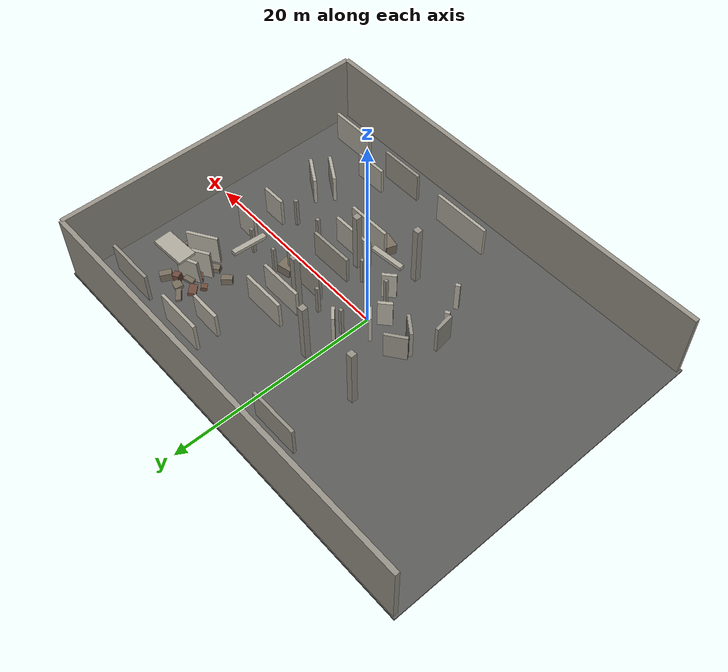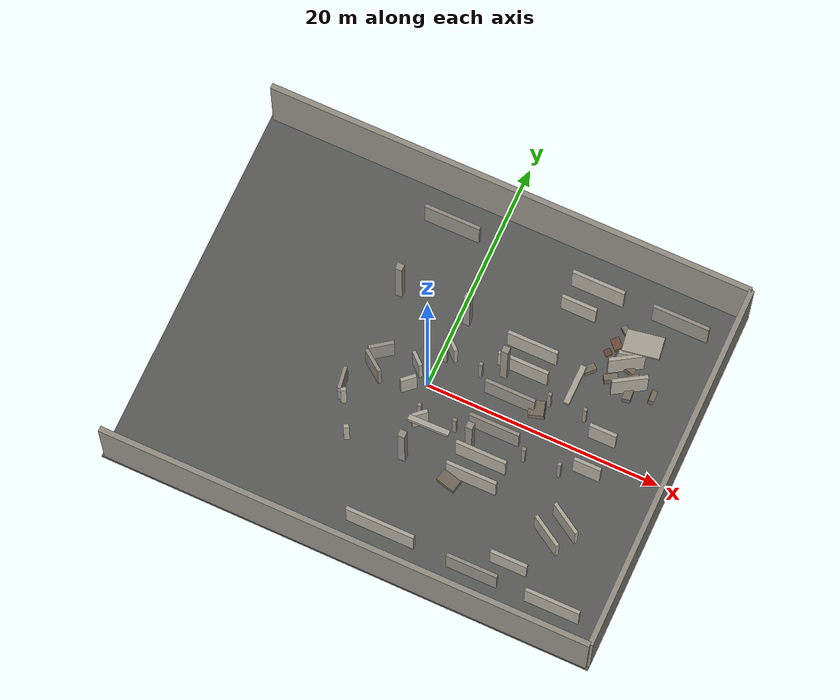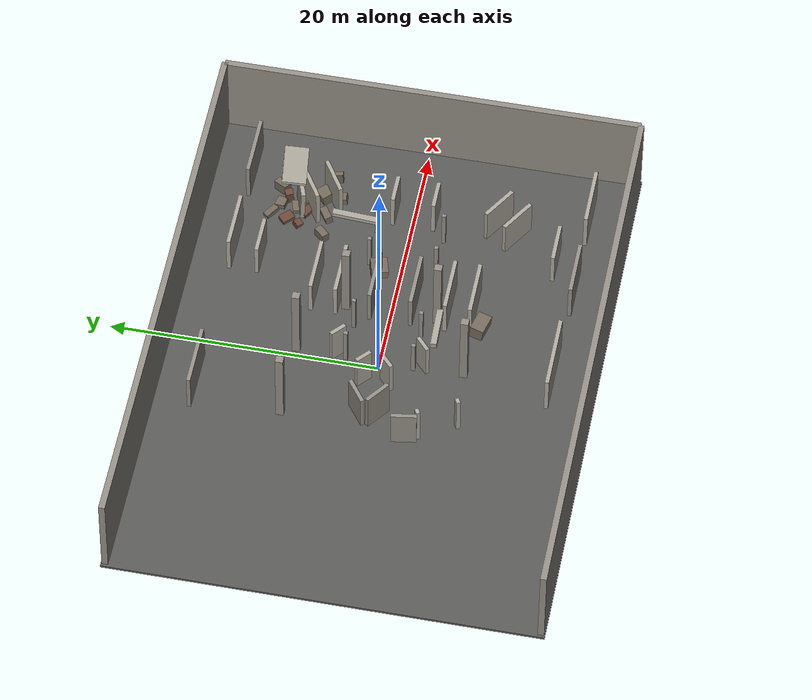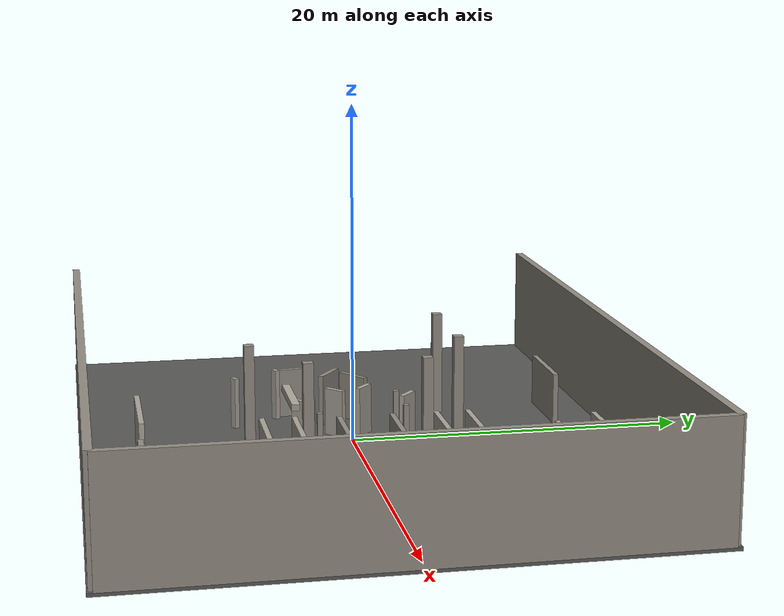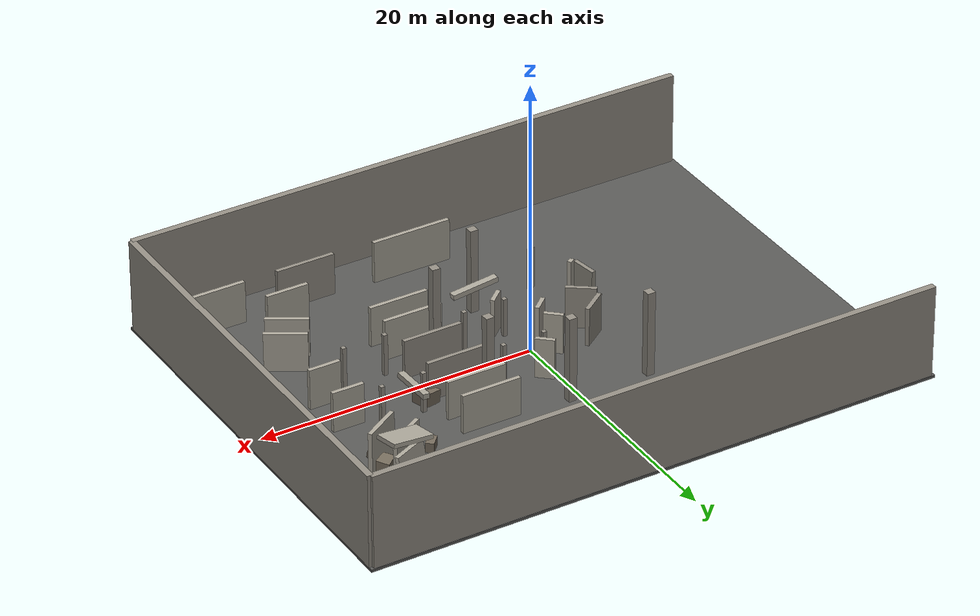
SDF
<sdf version="1.6">
 <model name="ruins_urban_01_challenge">
  <static>true</static>
  <link name="000_main_floor_slab">
   <pose>0.00000 0.00000 -0.10000 0.00000 0.00000 0.00000</pose>
   <visual name="visual">
    <geometry><box><size>42.00000 32.00000 0.20000</size></box></geometry>
    <material>
     <ambient>0.350 0.350 0.340 1</ambient>
     <diffuse>0.350 0.350 0.340 1</diffuse>
     <specular>0.03 0.03 0.03 1</specular>
    </material>
   </visual>
   <collision name="collision">
    <geometry><box><size>42.00000 32.00000 0.20000</size></box></geometry>
    <surface>
     <contact><collide_bitmask>0x01</collide_bitmask></contact>
     <friction><ode><mu>1.0</mu><mu2>1.0</mu2></ode></friction>
    </surface>
   </collision>
  </link>
  <link name="001_main_envelope_north">
   <pose>0.00000 15.70000 3.40000 0.00000 0.00000 0.00000</pose>
   <visual name="visual">
    <geometry><box><size>41.60000 0.46000 6.80000</size></box></geometry>
    <material>
     <ambient>0.580 0.560 0.520 1</ambient>
     <diffuse>0.580 0.560 0.520 1</diffuse>
     <specular>0.03 0.03 0.03 1</specular>
    </material>
   </visual>
   <collision name="collision">
    <geometry><box><size>41.60000 0.46000 6.80000</size></box></geometry>
    <surface>
     <contact><collide_bitmask>0x01</collide_bitmask></contact>
     <friction><ode><mu>1.0</mu><mu2>1.0</mu2></ode></friction>
    </surface>
   </collision>
  </link>
  <link name="002_main_envelope_south">
   <pose>0.00000 -15.70000 3.40000 0.00000 0.00000 0.00000</pose>
   <visual name="visual">
    <geometry><box><size>41.60000 0.46000 6.80000</size></box></geometry>
    <material>
     <ambient>0.580 0.560 0.520 1</ambient>
     <diffuse>0.580 0.560 0.520 1</diffuse>
     <specular>0.03 0.03 0.03 1</specular>
    </material>
   </visual>
   <collision name="collision">
    <geometry><box><size>41.60000 0.46000 6.80000</size></box></geometry>
    <surface>
     <contact><collide_bitmask>0x01</collide_bitmask></contact>
     <friction><ode><mu>1.0</mu><mu2>1.0</mu2></ode></friction>
    </surface>
   </collision>
  </link>
  <link name="005_main_envelope_east">
   <pose>20.80000 0.00000 3.40000 0.00000 0.00000 1.57080</pose>
   <visual name="visual">
    <geometry><box><size>31.40000 0.46000 6.80000</size></box></geometry>
    <material>
     <ambient>0.580 0.560 0.520 1</ambient>
     <diffuse>0.580 0.560 0.520 1</diffuse>
     <specular>0.03 0.03 0.03 1</specular>
    </material>
   </visual>
   <collision name="collision">
    <geometry><box><size>31.40000 0.46000 6.80000</size></box></geometry>
    <surface>
     <contact><collide_bitmask>0x01</collide_bitmask></contact>
     <friction><ode><mu>1.0</mu><mu2>1.0</mu2></ode></friction>
    </surface>
   </collision>
  </link>
  <link name="025_main_corridor_core_s_core_w_right">
   <pose>-5.99273 -3.01811 1.48500 0.00000 0.00000 1.72345</pose>
   <visual name="visual">
    <geometry><box><size>1.87647 0.30000 2.97000</size></box></geometry>
    <material>
     <ambient>0.580 0.560 0.520 1</ambient>
     <diffuse>0.580 0.560 0.520 1</diffuse>
     <specular>0.03 0.03 0.03 1</specular>
    </material>
   </visual>
   <collision name="collision">
    <geometry><box><size>1.87647 0.30000 2.97000</size></box></geometry>
    <surface>
     <contact><collide_bitmask>0x01</collide_bitmask></contact>
     <friction><ode><mu>1.0</mu><mu2>1.0</mu2></ode></friction>
    </surface>
   </collision>
  </link>
  <link name="029_main_corridor_core_w_atrium_n_right">
   <pose>-4.35304 0.76668 1.42500 0.00000 0.00000 0.62880</pose>
   <visual name="visual">
    <geometry><box><size>2.10074 0.30000 2.85000</size></box></geometry>
    <material>
     <ambient>0.580 0.560 0.520 1</ambient>
     <diffuse>0.580 0.560 0.520 1</diffuse>
     <specular>0.03 0.03 0.03 1</specular>
    </material>
   </visual>
   <collision name="collision">
    <geometry><box><size>2.10074 0.30000 2.85000</size></box></geometry>
    <surface>
     <contact><collide_bitmask>0x01</collide_bitmask></contact>
     <friction><ode><mu>1.0</mu><mu2>1.0</mu2></ode></friction>
    </surface>
   </collision>
  </link>
  <link name="030_main_corridor_atrium_n_central_left">
   <pose>0.76315 3.13980 1.48500 0.00000 0.00000 -0.72664</pose>
   <visual name="visual">
    <geometry><box><size>1.32080 0.30000 2.97000</size></box></geometry>
    <material>
     <ambient>0.680 0.660 0.610 1</ambient>
     <diffuse>0.680 0.660 0.610 1</diffuse>
     <specular>0.03 0.03 0.03 1</specular>
    </material>
   </visual>
   <collision name="collision">
    <geometry><box><size>1.32080 0.30000 2.97000</size></box></geometry>
    <surface>
     <contact><collide_bitmask>0x01</collide_bitmask></contact>
     <friction><ode><mu>1.0</mu><mu2>1.0</mu2></ode></friction>
    </surface>
   </collision>
  </link>
  <link name="031_main_corridor_atrium_n_central_right">
   <pose>-1.26315 0.86020 1.48500 0.00000 0.00000 -0.72664</pose>
   <visual name="visual">
    <geometry><box><size>1.32080 0.30000 2.97000</size></box></geometry>
    <material>
     <ambient>0.680 0.660 0.610 1</ambient>
     <diffuse>0.680 0.660 0.610 1</diffuse>
     <specular>0.03 0.03 0.03 1</specular>
    </material>
   </visual>
   <collision name="collision">
    <geometry><box><size>1.32080 0.30000 2.97000</size></box></geometry>
    <surface>
     <contact><collide_bitmask>0x01</collide_bitmask></contact>
     <friction><ode><mu>1.0</mu><mu2>1.0</mu2></ode></friction>
    </surface>
   </collision>
  </link>
  <link name="032_main_corridor_core_w_atrium_s_left">
   <pose>-4.35304 -0.76668 1.54500 0.00000 0.00000 -0.62880</pose>
   <visual name="visual">
    <geometry><box><size>2.10074 0.30000 3.09000</size></box></geometry>
    <material>
     <ambient>0.580 0.560 0.520 1</ambient>
     <diffuse>0.580 0.560 0.520 1</diffuse>
     <specular>0.03 0.03 0.03 1</specular>
    </material>
   </visual>
   <collision name="collision">
    <geometry><box><size>2.10074 0.30000 3.09000</size></box></geometry>
    <surface>
     <contact><collide_bitmask>0x01</collide_bitmask></contact>
     <friction><ode><mu>1.0</mu><mu2>1.0</mu2></ode></friction>
    </surface>
   </collision>
  </link>
  <link name="034_main_corridor_atrium_s_central_left">
   <pose>-1.26315 -0.86020 1.42500 0.00000 0.00000 0.72664</pose>
   <visual name="visual">
    <geometry><box><size>1.32080 0.30000 2.85000</size></box></geometry>
    <material>
     <ambient>0.680 0.660 0.610 1</ambient>
     <diffuse>0.680 0.660 0.610 1</diffuse>
     <specular>0.03 0.03 0.03 1</specular>
    </material>
   </visual>
   <collision name="collision">
    <geometry><box><size>1.32080 0.30000 2.85000</size></box></geometry>
    <surface>
     <contact><collide_bitmask>0x01</collide_bitmask></contact>
     <friction><ode><mu>1.0</mu><mu2>1.0</mu2></ode></friction>
    </surface>
   </collision>
  </link>
  <link name="035_main_corridor_atrium_s_central_right">
   <pose>0.76315 -3.13980 1.42500 0.00000 0.00000 0.72664</pose>
   <visual name="visual">
    <geometry><box><size>1.32080 0.30000 2.85000</size></box></geometry>
    <material>
     <ambient>0.680 0.660 0.610 1</ambient>
     <diffuse>0.680 0.660 0.610 1</diffuse>
     <specular>0.03 0.03 0.03 1</specular>
    </material>
   </visual>
   <collision name="collision">
    <geometry><box><size>1.32080 0.30000 2.85000</size></box></geometry>
    <surface>
     <contact><collide_bitmask>0x01</collide_bitmask></contact>
     <friction><ode><mu>1.0</mu><mu2>1.0</mu2></ode></friction>
    </surface>
   </collision>
  </link>
  <link name="036_main_corridor_core_s_atrium_s_left">
   <pose>-5.49061 -3.91691 1.54500 0.00000 0.00000 0.50710</pose>
   <visual name="visual">
    <geometry><box><size>0.44782 0.30000 3.09000</size></box></geometry>
    <material>
     <ambient>0.680 0.660 0.610 1</ambient>
     <diffuse>0.680 0.660 0.610 1</diffuse>
     <specular>0.03 0.03 0.03 1</specular>
    </material>
   </visual>
   <collision name="collision">
    <geometry><box><size>0.44782 0.30000 3.09000</size></box></geometry>
    <surface>
     <contact><collide_bitmask>0x01</collide_bitmask></contact>
     <friction><ode><mu>1.0</mu><mu2>1.0</mu2></ode></friction>
    </surface>
   </collision>
  </link>
  <link name="037_main_corridor_core_s_atrium_s_right">
   <pose>-4.00939 -6.58309 1.54500 0.00000 0.00000 0.50710</pose>
   <visual name="visual">
    <geometry><box><size>0.44782 0.30000 3.09000</size></box></geometry>
    <material>
     <ambient>0.680 0.660 0.610 1</ambient>
     <diffuse>0.680 0.660 0.610 1</diffuse>
     <specular>0.03 0.03 0.03 1</specular>
    </material>
   </visual>
   <collision name="collision">
    <geometry><box><size>0.44782 0.30000 3.09000</size></box></geometry>
    <surface>
     <contact><collide_bitmask>0x01</collide_bitmask></contact>
     <friction><ode><mu>1.0</mu><mu2>1.0</mu2></ode></friction>
    </surface>
   </collision>
  </link>
  <link name="038_main_corridor_central_east_core_left">
   <pose>6.50000 1.52500 1.42500 0.00000 0.00000 0.00000</pose>
   <visual name="visual">
    <geometry><box><size>4.30000 0.30000 2.85000</size></box></geometry>
    <material>
     <ambient>0.580 0.560 0.520 1</ambient>
     <diffuse>0.580 0.560 0.520 1</diffuse>
     <specular>0.03 0.03 0.03 1</specular>
    </material>
   </visual>
   <collision name="collision">
    <geometry><box><size>4.30000 0.30000 2.85000</size></box></geometry>
    <surface>
     <contact><collide_bitmask>0x01</collide_bitmask></contact>
     <friction><ode><mu>1.0</mu><mu2>1.0</mu2></ode></friction>
    </surface>
   </collision>
  </link>
  <link name="039_main_corridor_central_east_core_right">
   <pose>6.50000 -1.52500 1.42500 0.00000 0.00000 0.00000</pose>
   <visual name="visual">
    <geometry><box><size>4.30000 0.30000 2.85000</size></box></geometry>
    <material>
     <ambient>0.580 0.560 0.520 1</ambient>
     <diffuse>0.580 0.560 0.520 1</diffuse>
     <specular>0.03 0.03 0.03 1</specular>
    </material>
   </visual>
   <collision name="collision">
    <geometry><box><size>4.30000 0.30000 2.85000</size></box></geometry>
    <surface>
     <contact><collide_bitmask>0x01</collide_bitmask></contact>
     <friction><ode><mu>1.0</mu><mu2>1.0</mu2></ode></friction>
    </surface>
   </collision>
  </link>
  <link name="040_main_corridor_east_core_east_exit_left">
   <pose>14.50000 1.52500 1.48500 0.00000 0.00000 0.00000</pose>
   <visual name="visual">
    <geometry><box><size>2.30000 0.30000 2.97000</size></box></geometry>
    <material>
     <ambient>0.680 0.660 0.610 1</ambient>
     <diffuse>0.680 0.660 0.610 1</diffuse>
     <specular>0.03 0.03 0.03 1</specular>
    </material>
   </visual>
   <collision name="collision">
    <geometry><box><size>2.30000 0.30000 2.97000</size></box></geometry>
    <surface>
     <contact><collide_bitmask>0x01</collide_bitmask></contact>
     <friction><ode><mu>1.0</mu><mu2>1.0</mu2></ode></friction>
    </surface>
   </collision>
  </link>
  <link name="041_main_corridor_east_core_east_exit_right">
   <pose>14.50000 -1.52500 1.48500 0.00000 0.00000 0.00000</pose>
   <visual name="visual">
    <geometry><box><size>2.30000 0.30000 2.97000</size></box></geometry>
    <material>
     <ambient>0.680 0.660 0.610 1</ambient>
     <diffuse>0.680 0.660 0.610 1</diffuse>
     <specular>0.03 0.03 0.03 1</specular>
    </material>
   </visual>
   <collision name="collision">
    <geometry><box><size>2.30000 0.30000 2.97000</size></box></geometry>
    <surface>
     <contact><collide_bitmask>0x01</collide_bitmask></contact>
     <friction><ode><mu>1.0</mu><mu2>1.0</mu2></ode></friction>
    </surface>
   </collision>
  </link>
  <link name="042_main_corridor_central_east_n1_left">
   <pose>0.47500 2.50000 1.54500 0.00000 0.00000 1.57080</pose>
   <visual name="visual">
    <geometry><box><size>0.30000 0.30000 3.09000</size></box></geometry>
    <material>
     <ambient>0.580 0.560 0.520 1</ambient>
     <diffuse>0.580 0.560 0.520 1</diffuse>
     <specular>0.03 0.03 0.03 1</specular>
    </material>
   </visual>
   <collision name="collision">
    <geometry><box><size>0.30000 0.30000 3.09000</size></box></geometry>
    <surface>
     <contact><collide_bitmask>0x01</collide_bitmask></contact>
     <friction><ode><mu>1.0</mu><mu2>1.0</mu2></ode></friction>
    </surface>
   </collision>
  </link>
  <link name="043_main_corridor_central_east_n1_right">
   <pose>3.52500 2.50000 1.54500 0.00000 0.00000 1.57080</pose>
   <visual name="visual">
    <geometry><box><size>0.30000 0.30000 3.09000</size></box></geometry>
    <material>
     <ambient>0.580 0.560 0.520 1</ambient>
     <diffuse>0.580 0.560 0.520 1</diffuse>
     <specular>0.03 0.03 0.03 1</specular>
    </material>
   </visual>
   <collision name="collision">
    <geometry><box><size>0.30000 0.30000 3.09000</size></box></geometry>
    <surface>
     <contact><collide_bitmask>0x01</collide_bitmask></contact>
     <friction><ode><mu>1.0</mu><mu2>1.0</mu2></ode></friction>
    </surface>
   </collision>
  </link>
  <link name="044_main_corridor_east_n1_east_n2_left">
   <pose>6.50000 5.92500 1.42500 0.00000 0.00000 0.00000</pose>
   <visual name="visual">
    <geometry><box><size>4.30000 0.30000 2.85000</size></box></geometry>
    <material>
     <ambient>0.680 0.660 0.610 1</ambient>
     <diffuse>0.680 0.660 0.610 1</diffuse>
     <specular>0.03 0.03 0.03 1</specular>
    </material>
   </visual>
   <collision name="collision">
    <geometry><box><size>4.30000 0.30000 2.85000</size></box></geometry>
    <surface>
     <contact><collide_bitmask>0x01</collide_bitmask></contact>
     <friction><ode><mu>1.0</mu><mu2>1.0</mu2></ode></friction>
    </surface>
   </collision>
  </link>
  <link name="045_main_corridor_east_n1_east_n2_right">
   <pose>6.50000 4.07500 1.42500 0.00000 0.00000 0.00000</pose>
   <visual name="visual">
    <geometry><box><size>4.30000 0.30000 2.85000</size></box></geometry>
    <material>
     <ambient>0.680 0.660 0.610 1</ambient>
     <diffuse>0.680 0.660 0.610 1</diffuse>
     <specular>0.03 0.03 0.03 1</specular>
    </material>
   </visual>
   <collision name="collision">
    <geometry><box><size>4.30000 0.30000 2.85000</size></box></geometry>
    <surface>
     <contact><collide_bitmask>0x01</collide_bitmask></contact>
     <friction><ode><mu>1.0</mu><mu2>1.0</mu2></ode></friction>
    </surface>
   </collision>
  </link>
  <link name="046_main_corridor_east_n2_east_core_left">
   <pose>12.52500 2.50000 1.48500 0.00000 0.00000 -1.57080</pose>
   <visual name="visual">
    <geometry><box><size>0.30000 0.30000 2.97000</size></box></geometry>
    <material>
     <ambient>0.580 0.560 0.520 1</ambient>
     <diffuse>0.580 0.560 0.520 1</diffuse>
     <specular>0.03 0.03 0.03 1</specular>
    </material>
   </visual>
   <collision name="collision">
    <geometry><box><size>0.30000 0.30000 2.97000</size></box></geometry>
    <surface>
     <contact><collide_bitmask>0x01</collide_bitmask></contact>
     <friction><ode><mu>1.0</mu><mu2>1.0</mu2></ode></friction>
    </surface>
   </collision>
  </link>
  <link name="047_main_corridor_east_n2_east_core_right">
   <pose>9.47500 2.50000 1.48500 0.00000 0.00000 -1.57080</pose>
   <visual name="visual">
    <geometry><box><size>0.30000 0.30000 2.97000</size></box></geometry>
    <material>
     <ambient>0.580 0.560 0.520 1</ambient>
     <diffuse>0.580 0.560 0.520 1</diffuse>
     <specular>0.03 0.03 0.03 1</specular>
    </material>
   </visual>
   <collision name="collision">
    <geometry><box><size>0.30000 0.30000 2.97000</size></box></geometry>
    <surface>
     <contact><collide_bitmask>0x01</collide_bitmask></contact>
     <friction><ode><mu>1.0</mu><mu2>1.0</mu2></ode></friction>
    </surface>
   </collision>
  </link>
  <link name="048_main_corridor_east_n2_east_n_dead_left">
   <pose>13.77831 7.76649 1.54500 0.00000 0.00000 0.55165</pose>
   <visual name="visual">
    <geometry><box><size>2.93217 0.30000 3.09000</size></box></geometry>
    <material>
     <ambient>0.680 0.660 0.610 1</ambient>
     <diffuse>0.680 0.660 0.610 1</diffuse>
     <specular>0.03 0.03 0.03 1</specular>
    </material>
   </visual>
   <collision name="collision">
    <geometry><box><size>2.93217 0.30000 3.09000</size></box></geometry>
    <surface>
     <contact><collide_bitmask>0x01</collide_bitmask></contact>
     <friction><ode><mu>1.0</mu><mu2>1.0</mu2></ode></friction>
    </surface>
   </collision>
  </link>
  <link name="049_main_corridor_east_n2_east_n_dead_right">
   <pose>14.72169 6.23351 1.54500 0.00000 0.00000 0.55165</pose>
   <visual name="visual">
    <geometry><box><size>2.93217 0.30000 3.09000</size></box></geometry>
    <material>
     <ambient>0.680 0.660 0.610 1</ambient>
     <diffuse>0.680 0.660 0.610 1</diffuse>
     <specular>0.03 0.03 0.03 1</specular>
    </material>
   </visual>
   <collision name="collision">
    <geometry><box><size>2.93217 0.30000 3.09000</size></box></geometry>
    <surface>
     <contact><collide_bitmask>0x01</collide_bitmask></contact>
     <friction><ode><mu>1.0</mu><mu2>1.0</mu2></ode></friction>
    </surface>
   </collision>
  </link>
  <link name="050_main_corridor_central_east_s1_left">
   <pose>3.52500 -2.50000 1.42500 0.00000 0.00000 -1.57080</pose>
   <visual name="visual">
    <geometry><box><size>0.30000 0.30000 2.85000</size></box></geometry>
    <material>
     <ambient>0.580 0.560 0.520 1</ambient>
     <diffuse>0.580 0.560 0.520 1</diffuse>
     <specular>0.03 0.03 0.03 1</specular>
    </material>
   </visual>
   <collision name="collision">
    <geometry><box><size>0.30000 0.30000 2.85000</size></box></geometry>
    <surface>
     <contact><collide_bitmask>0x01</collide_bitmask></contact>
     <friction><ode><mu>1.0</mu><mu2>1.0</mu2></ode></friction>
    </surface>
   </collision>
  </link>
  <link name="051_main_corridor_central_east_s1_right">
   <pose>0.47500 -2.50000 1.42500 0.00000 0.00000 -1.57080</pose>
   <visual name="visual">
    <geometry><box><size>0.30000 0.30000 2.85000</size></box></geometry>
    <material>
     <ambient>0.580 0.560 0.520 1</ambient>
     <diffuse>0.580 0.560 0.520 1</diffuse>
     <specular>0.03 0.03 0.03 1</specular>
    </material>
   </visual>
   <collision name="collision">
    <geometry><box><size>0.30000 0.30000 2.85000</size></box></geometry>
    <surface>
     <contact><collide_bitmask>0x01</collide_bitmask></contact>
     <friction><ode><mu>1.0</mu><mu2>1.0</mu2></ode></friction>
    </surface>
   </collision>
  </link>
  <link name="052_main_corridor_east_s1_east_s2_left">
   <pose>6.50000 -4.07500 1.48500 0.00000 0.00000 0.00000</pose>
   <visual name="visual">
    <geometry><box><size>4.30000 0.30000 2.97000</size></box></geometry>
    <material>
     <ambient>0.680 0.660 0.610 1</ambient>
     <diffuse>0.680 0.660 0.610 1</diffuse>
     <specular>0.03 0.03 0.03 1</specular>
    </material>
   </visual>
   <collision name="collision">
    <geometry><box><size>4.30000 0.30000 2.97000</size></box></geometry>
    <surface>
     <contact><collide_bitmask>0x01</collide_bitmask></contact>
     <friction><ode><mu>1.0</mu><mu2>1.0</mu2></ode></friction>
    </surface>
   </collision>
  </link>
  <link name="053_main_corridor_east_s1_east_s2_right">
   <pose>6.50000 -5.92500 1.48500 0.00000 0.00000 0.00000</pose>
   <visual name="visual">
    <geometry><box><size>4.30000 0.30000 2.97000</size></box></geometry>
    <material>
     <ambient>0.680 0.660 0.610 1</ambient>
     <diffuse>0.680 0.660 0.610 1</diffuse>
     <specular>0.03 0.03 0.03 1</specular>
    </material>
   </visual>
   <collision name="collision">
    <geometry><box><size>4.30000 0.30000 2.97000</size></box></geometry>
    <surface>
     <contact><collide_bitmask>0x01</collide_bitmask></contact>
     <friction><ode><mu>1.0</mu><mu2>1.0</mu2></ode></friction>
    </surface>
   </collision>
  </link>
  <link name="054_main_corridor_east_s2_east_core_left">
   <pose>9.47500 -2.50000 1.54500 0.00000 0.00000 1.57080</pose>
   <visual name="visual">
    <geometry><box><size>0.30000 0.30000 3.09000</size></box></geometry>
    <material>
     <ambient>0.580 0.560 0.520 1</ambient>
     <diffuse>0.580 0.560 0.520 1</diffuse>
     <specular>0.03 0.03 0.03 1</specular>
    </material>
   </visual>
   <collision name="collision">
    <geometry><box><size>0.30000 0.30000 3.09000</size></box></geometry>
    <surface>
     <contact><collide_bitmask>0x01</collide_bitmask></contact>
     <friction><ode><mu>1.0</mu><mu2>1.0</mu2></ode></friction>
    </surface>
   </collision>
  </link>
  <link name="055_main_corridor_east_s2_east_core_right">
   <pose>12.52500 -2.50000 1.54500 0.00000 0.00000 1.57080</pose>
   <visual name="visual">
    <geometry><box><size>0.30000 0.30000 3.09000</size></box></geometry>
    <material>
     <ambient>0.580 0.560 0.520 1</ambient>
     <diffuse>0.580 0.560 0.520 1</diffuse>
     <specular>0.03 0.03 0.03 1</specular>
    </material>
   </visual>
   <collision name="collision">
    <geometry><box><size>0.30000 0.30000 3.09000</size></box></geometry>
    <surface>
     <contact><collide_bitmask>0x01</collide_bitmask></contact>
     <friction><ode><mu>1.0</mu><mu2>1.0</mu2></ode></friction>
    </surface>
   </collision>
  </link>
  <link name="056_main_corridor_east_s2_east_s_dead_left">
   <pose>14.72169 -6.23351 1.42500 0.00000 0.00000 -0.55165</pose>
   <visual name="visual">
    <geometry><box><size>2.93217 0.30000 2.85000</size></box></geometry>
    <material>
     <ambient>0.680 0.660 0.610 1</ambient>
     <diffuse>0.680 0.660 0.610 1</diffuse>
     <specular>0.03 0.03 0.03 1</specular>
    </material>
   </visual>
   <collision name="collision">
    <geometry><box><size>2.93217 0.30000 2.85000</size></box></geometry>
    <surface>
     <contact><collide_bitmask>0x01</collide_bitmask></contact>
     <friction><ode><mu>1.0</mu><mu2>1.0</mu2></ode></friction>
    </surface>
   </collision>
  </link>
  <link name="057_main_corridor_east_s2_east_s_dead_right">
   <pose>13.77831 -7.76649 1.42500 0.00000 0.00000 -0.55165</pose>
   <visual name="visual">
    <geometry><box><size>2.93217 0.30000 2.85000</size></box></geometry>
    <material>
     <ambient>0.680 0.660 0.610 1</ambient>
     <diffuse>0.680 0.660 0.610 1</diffuse>
     <specular>0.03 0.03 0.03 1</specular>
    </material>
   </visual>
   <collision name="collision">
    <geometry><box><size>2.93217 0.30000 2.85000</size></box></geometry>
    <surface>
     <contact><collide_bitmask>0x01</collide_bitmask></contact>
     <friction><ode><mu>1.0</mu><mu2>1.0</mu2></ode></friction>
    </surface>
   </collision>
  </link>
  <link name="060_main_shell_north_service">
   <pose>-3.60000 12.80000 1.55000 0.00000 0.00000 0.00000</pose>
   <visual name="visual">
    <geometry><box><size>4.80000 0.30000 3.10000</size></box></geometry>
    <material>
     <ambient>0.580 0.560 0.520 1</ambient>
     <diffuse>0.580 0.560 0.520 1</diffuse>
     <specular>0.03 0.03 0.03 1</specular>
    </material>
   </visual>
   <collision name="collision">
    <geometry><box><size>4.80000 0.30000 3.10000</size></box></geometry>
    <surface>
     <contact><collide_bitmask>0x01</collide_bitmask></contact>
     <friction><ode><mu>1.0</mu><mu2>1.0</mu2></ode></friction>
    </surface>
   </collision>
  </link>
  <link name="061_main_shell_east_north_a">
   <pose>9.25000 12.60000 1.55000 0.00000 0.00000 0.00000</pose>
   <visual name="visual">
    <geometry><box><size>4.50000 0.30000 3.10000</size></box></geometry>
    <material>
     <ambient>0.680 0.660 0.610 1</ambient>
     <diffuse>0.680 0.660 0.610 1</diffuse>
     <specular>0.03 0.03 0.03 1</specular>
    </material>
   </visual>
   <collision name="collision">
    <geometry><box><size>4.50000 0.30000 3.10000</size></box></geometry>
    <surface>
     <contact><collide_bitmask>0x01</collide_bitmask></contact>
     <friction><ode><mu>1.0</mu><mu2>1.0</mu2></ode></friction>
    </surface>
   </collision>
  </link>
  <link name="062_main_shell_east_north_b">
   <pose>16.40000 12.60000 1.55000 0.00000 0.00000 0.00000</pose>
   <visual name="visual">
    <geometry><box><size>4.80000 0.30000 3.10000</size></box></geometry>
    <material>
     <ambient>0.580 0.560 0.520 1</ambient>
     <diffuse>0.580 0.560 0.520 1</diffuse>
     <specular>0.03 0.03 0.03 1</specular>
    </material>
   </visual>
   <collision name="collision">
    <geometry><box><size>4.80000 0.30000 3.10000</size></box></geometry>
    <surface>
     <contact><collide_bitmask>0x01</collide_bitmask></contact>
     <friction><ode><mu>1.0</mu><mu2>1.0</mu2></ode></friction>
    </surface>
   </collision>
  </link>
  <link name="065_main_shell_south_service">
   <pose>1.70000 -12.60000 1.55000 0.00000 0.00000 0.00000</pose>
   <visual name="visual">
    <geometry><box><size>5.80000 0.30000 3.10000</size></box></geometry>
    <material>
     <ambient>0.680 0.660 0.610 1</ambient>
     <diffuse>0.680 0.660 0.610 1</diffuse>
     <specular>0.03 0.03 0.03 1</specular>
    </material>
   </visual>
   <collision name="collision">
    <geometry><box><size>5.80000 0.30000 3.10000</size></box></geometry>
    <surface>
     <contact><collide_bitmask>0x01</collide_bitmask></contact>
     <friction><ode><mu>1.0</mu><mu2>1.0</mu2></ode></friction>
    </surface>
   </collision>
  </link>
  <link name="066_main_shell_east_south_a">
   <pose>9.65000 -12.80000 1.55000 0.00000 0.00000 0.00000</pose>
   <visual name="visual">
    <geometry><box><size>4.30000 0.30000 3.10000</size></box></geometry>
    <material>
     <ambient>0.580 0.560 0.520 1</ambient>
     <diffuse>0.580 0.560 0.520 1</diffuse>
     <specular>0.03 0.03 0.03 1</specular>
    </material>
   </visual>
   <collision name="collision">
    <geometry><box><size>4.30000 0.30000 3.10000</size></box></geometry>
    <surface>
     <contact><collide_bitmask>0x01</collide_bitmask></contact>
     <friction><ode><mu>1.0</mu><mu2>1.0</mu2></ode></friction>
    </surface>
   </collision>
  </link>
  <link name="067_main_shell_east_south_b">
   <pose>16.50000 -12.80000 1.55000 0.00000 0.00000 0.00000</pose>
   <visual name="visual">
    <geometry><box><size>4.60000 0.30000 3.10000</size></box></geometry>
    <material>
     <ambient>0.680 0.660 0.610 1</ambient>
     <diffuse>0.680 0.660 0.610 1</diffuse>
     <specular>0.03 0.03 0.03 1</specular>
    </material>
   </visual>
   <collision name="collision">
    <geometry><box><size>4.60000 0.30000 3.10000</size></box></geometry>
    <surface>
     <contact><collide_bitmask>0x01</collide_bitmask></contact>
     <friction><ode><mu>1.0</mu><mu2>1.0</mu2></ode></friction>
    </surface>
   </collision>
  </link>
  <link name="068_main_atrium_column_01">
   <pose>-5.20000 6.20000 3.15000 0.00000 0.00000 0.00000</pose>
   <visual name="visual">
    <geometry><box><size>0.58000 0.58000 6.30000</size></box></geometry>
    <material>
     <ambient>0.580 0.560 0.520 1</ambient>
     <diffuse>0.580 0.560 0.520 1</diffuse>
     <specular>0.03 0.03 0.03 1</specular>
    </material>
   </visual>
   <collision name="collision">
    <geometry><box><size>0.58000 0.58000 6.30000</size></box></geometry>
    <surface>
     <contact><collide_bitmask>0x01</collide_bitmask></contact>
     <friction><ode><mu>1.0</mu><mu2>1.0</mu2></ode></friction>
    </surface>
   </collision>
  </link>
  <link name="069_main_atrium_column_02">
   <pose>0.70000 6.20000 3.15000 0.00000 0.00000 0.00000</pose>
   <visual name="visual">
    <geometry><box><size>0.58000 0.58000 6.30000</size></box></geometry>
    <material>
     <ambient>0.580 0.560 0.520 1</ambient>
     <diffuse>0.580 0.560 0.520 1</diffuse>
     <specular>0.03 0.03 0.03 1</specular>
    </material>
   </visual>
   <collision name="collision">
    <geometry><box><size>0.58000 0.58000 6.30000</size></box></geometry>
    <surface>
     <contact><collide_bitmask>0x01</collide_bitmask></contact>
     <friction><ode><mu>1.0</mu><mu2>1.0</mu2></ode></friction>
    </surface>
   </collision>
  </link>
  <link name="070_main_atrium_column_03">
   <pose>5.20000 3.40000 3.15000 0.00000 0.00000 0.00000</pose>
   <visual name="visual">
    <geometry><box><size>0.58000 0.58000 6.30000</size></box></geometry>
    <material>
     <ambient>0.580 0.560 0.520 1</ambient>
     <diffuse>0.580 0.560 0.520 1</diffuse>
     <specular>0.03 0.03 0.03 1</specular>
    </material>
   </visual>
   <collision name="collision">
    <geometry><box><size>0.58000 0.58000 6.30000</size></box></geometry>
    <surface>
     <contact><collide_bitmask>0x01</collide_bitmask></contact>
     <friction><ode><mu>1.0</mu><mu2>1.0</mu2></ode></friction>
    </surface>
   </collision>
  </link>
  <link name="071_main_atrium_column_04">
   <pose>5.20000 -3.40000 3.15000 0.00000 0.00000 0.00000</pose>
   <visual name="visual">
    <geometry><box><size>0.58000 0.58000 6.30000</size></box></geometry>
    <material>
     <ambient>0.580 0.560 0.520 1</ambient>
     <diffuse>0.580 0.560 0.520 1</diffuse>
     <specular>0.03 0.03 0.03 1</specular>
    </material>
   </visual>
   <collision name="collision">
    <geometry><box><size>0.58000 0.58000 6.30000</size></box></geometry>
    <surface>
     <contact><collide_bitmask>0x01</collide_bitmask></contact>
     <friction><ode><mu>1.0</mu><mu2>1.0</mu2></ode></friction>
    </surface>
   </collision>
  </link>
  <link name="072_main_atrium_column_05">
   <pose>0.70000 -6.20000 3.15000 0.00000 0.00000 0.00000</pose>
   <visual name="visual">
    <geometry><box><size>0.58000 0.58000 6.30000</size></box></geometry>
    <material>
     <ambient>0.580 0.560 0.520 1</ambient>
     <diffuse>0.580 0.560 0.520 1</diffuse>
     <specular>0.03 0.03 0.03 1</specular>
    </material>
   </visual>
   <collision name="collision">
    <geometry><box><size>0.58000 0.58000 6.30000</size></box></geometry>
    <surface>
     <contact><collide_bitmask>0x01</collide_bitmask></contact>
     <friction><ode><mu>1.0</mu><mu2>1.0</mu2></ode></friction>
    </surface>
   </collision>
  </link>
  <link name="075_main_structure_lintel_central">
   <pose>1.90000 -3.95000 3.40000 -0.05000 0.08000 0.04000</pose>
   <visual name="visual">
    <geometry><box><size>3.45000 0.46000 0.38000</size></box></geometry>
    <material>
     <ambient>0.680 0.660 0.610 1</ambient>
     <diffuse>0.680 0.660 0.610 1</diffuse>
     <specular>0.03 0.03 0.03 1</specular>
    </material>
   </visual>
   <collision name="collision">
    <geometry><box><size>3.45000 0.46000 0.38000</size></box></geometry>
    <surface>
     <contact><collide_bitmask>0x01</collide_bitmask></contact>
     <friction><ode><mu>1.0</mu><mu2>1.0</mu2></ode></friction>
    </surface>
   </collision>
  </link>
  <link name="076_main_structure_lintel_east">
   <pose>11.00000 3.90000 3.30000 0.06000 -0.08000 -0.02000</pose>
   <visual name="visual">
    <geometry><box><size>0.48000 3.35000 0.36000</size></box></geometry>
    <material>
     <ambient>0.680 0.660 0.610 1</ambient>
     <diffuse>0.680 0.660 0.610 1</diffuse>
     <specular>0.03 0.03 0.03 1</specular>
    </material>
   </visual>
   <collision name="collision">
    <geometry><box><size>0.48000 3.35000 0.36000</size></box></geometry>
    <surface>
     <contact><collide_bitmask>0x01</collide_bitmask></contact>
     <friction><ode><mu>1.0</mu><mu2>1.0</mu2></ode></friction>
    </surface>
   </collision>
  </link>
  <link name="077_main_structure_ceiling_fragment_north">
   <pose>14.60000 9.10000 3.65000 0.10000 -0.16000 0.12000</pose>
   <visual name="visual">
    <geometry><box><size>3.10000 1.80000 0.30000</size></box></geometry>
    <material>
     <ambient>0.680 0.660 0.610 1</ambient>
     <diffuse>0.680 0.660 0.610 1</diffuse>
     <specular>0.03 0.03 0.03 1</specular>
    </material>
   </visual>
   <collision name="collision">
    <geometry><box><size>3.10000 1.80000 0.30000</size></box></geometry>
    <surface>
     <contact><collide_bitmask>0x01</collide_bitmask></contact>
     <friction><ode><mu>1.0</mu><mu2>1.0</mu2></ode></friction>
    </surface>
   </collision>
  </link>
  <link name="108_main_collapse_2_28">
   <pose>14.31139 9.52686 0.39690 0.12539 0.05654 1.91721</pose>
   <visual name="visual">
    <geometry><box><size>0.59702 0.67193 0.79380</size></box></geometry>
    <material>
     <ambient>0.430 0.290 0.230 1</ambient>
     <diffuse>0.430 0.290 0.230 1</diffuse>
     <specular>0.03 0.03 0.03 1</specular>
    </material>
   </visual>
   <collision name="collision">
    <geometry><box><size>0.59702 0.67193 0.79380</size></box></geometry>
    <surface>
     <contact><collide_bitmask>0x01</collide_bitmask></contact>
     <friction><ode><mu>1.0</mu><mu2>1.0</mu2></ode></friction>
    </surface>
   </collision>
  </link>
  <link name="109_main_collapse_2_29">
   <pose>14.86020 5.74199 0.26523 -0.04999 0.16508 1.67223</pose>
   <visual name="visual">
    <geometry><box><size>1.00253 0.69399 0.53045</size></box></geometry>
    <material>
     <ambient>0.460 0.420 0.360 1</ambient>
     <diffuse>0.460 0.420 0.360 1</diffuse>
     <specular>0.03 0.03 0.03 1</specular>
    </material>
   </visual>
   <collision name="collision">
    <geometry><box><size>1.00253 0.69399 0.53045</size></box></geometry>
    <surface>
     <contact><collide_bitmask>0x01</collide_bitmask></contact>
     <friction><ode><mu>1.0</mu><mu2>1.0</mu2></ode></friction>
    </surface>
   </collision>
  </link>
  <link name="110_main_collapse_2_30">
   <pose>14.11408 7.77168 0.25441 0.17732 0.13217 1.40998</pose>
   <visual name="visual">
    <geometry><box><size>0.52907 0.92862 0.50881</size></box></geometry>
    <material>
     <ambient>0.460 0.420 0.360 1</ambient>
     <diffuse>0.460 0.420 0.360 1</diffuse>
     <specular>0.03 0.03 0.03 1</specular>
    </material>
   </visual>
   <collision name="collision">
    <geometry><box><size>0.52907 0.92862 0.50881</size></box></geometry>
    <surface>
     <contact><collide_bitmask>0x01</collide_bitmask></contact>
     <friction><ode><mu>1.0</mu><mu2>1.0</mu2></ode></friction>
    </surface>
   </collision>
  </link>
  <link name="111_main_collapse_2_31">
   <pose>11.21578 6.45838 0.35824 -0.01511 -0.00776 0.81176</pose>
   <visual name="visual">
    <geometry><box><size>1.00865 0.57980 0.71647</size></box></geometry>
    <material>
     <ambient>0.460 0.420 0.360 1</ambient>
     <diffuse>0.460 0.420 0.360 1</diffuse>
     <specular>0.03 0.03 0.03 1</specular>
    </material>
   </visual>
   <collision name="collision">
    <geometry><box><size>1.00865 0.57980 0.71647</size></box></geometry>
    <surface>
     <contact><collide_bitmask>0x01</collide_bitmask></contact>
     <friction><ode><mu>1.0</mu><mu2>1.0</mu2></ode></friction>
    </surface>
   </collision>
  </link>
  <link name="112_main_collapse_2_32">
   <pose>12.36028 9.33516 0.20610 -0.14699 0.10272 2.32830</pose>
   <visual name="visual">
    <geometry><box><size>1.00895 0.72114 0.41220</size></box></geometry>
    <material>
     <ambient>0.430 0.290 0.230 1</ambient>
     <diffuse>0.430 0.290 0.230 1</diffuse>
     <specular>0.03 0.03 0.03 1</specular>
    </material>
   </visual>
   <collision name="collision">
    <geometry><box><size>1.00895 0.72114 0.41220</size></box></geometry>
    <surface>
     <contact><collide_bitmask>0x01</collide_bitmask></contact>
     <friction><ode><mu>1.0</mu><mu2>1.0</mu2></ode></friction>
    </surface>
   </collision>
  </link>
  <link name="113_main_collapse_2_33">
   <pose>16.71800 6.38105 0.37998 0.14843 0.10208 1.62808</pose>
   <visual name="visual">
    <geometry><box><size>0.97265 0.41795 0.75997</size></box></geometry>
    <material>
     <ambient>0.460 0.420 0.360 1</ambient>
     <diffuse>0.460 0.420 0.360 1</diffuse>
     <specular>0.03 0.03 0.03 1</specular>
    </material>
   </visual>
   <collision name="collision">
    <geometry><box><size>0.97265 0.41795 0.75997</size></box></geometry>
    <surface>
     <contact><collide_bitmask>0x01</collide_bitmask></contact>
     <friction><ode><mu>1.0</mu><mu2>1.0</mu2></ode></friction>
    </surface>
   </collision>
  </link>
  <link name="114_main_collapse_2_34">
   <pose>13.06213 6.48292 0.32365 -0.14737 0.00301 0.55831</pose>
   <visual name="visual">
    <geometry><box><size>1.13919 0.55175 0.64730</size></box></geometry>
    <material>
     <ambient>0.460 0.420 0.360 1</ambient>
     <diffuse>0.460 0.420 0.360 1</diffuse>
     <specular>0.03 0.03 0.03 1</specular>
    </material>
   </visual>
   <collision name="collision">
    <geometry><box><size>1.13919 0.55175 0.64730</size></box></geometry>
    <surface>
     <contact><collide_bitmask>0x01</collide_bitmask></contact>
     <friction><ode><mu>1.0</mu><mu2>1.0</mu2></ode></friction>
    </surface>
   </collision>
  </link>
  <link name="115_main_collapse_2_35">
   <pose>13.53251 8.75596 0.18669 -0.06746 -0.06649 0.28389</pose>
   <visual name="visual">
    <geometry><box><size>0.97165 0.73843 0.37337</size></box></geometry>
    <material>
     <ambient>0.460 0.420 0.360 1</ambient>
     <diffuse>0.460 0.420 0.360 1</diffuse>
     <specular>0.03 0.03 0.03 1</specular>
    </material>
   </visual>
   <collision name="collision">
    <geometry><box><size>0.97165 0.73843 0.37337</size></box></geometry>
    <surface>
     <contact><collide_bitmask>0x01</collide_bitmask></contact>
     <friction><ode><mu>1.0</mu><mu2>1.0</mu2></ode></friction>
    </surface>
   </collision>
  </link>
  <link name="116_main_collapse_2_36">
   <pose>13.18292 7.95900 0.23852 -0.15245 0.09521 2.59100</pose>
   <visual name="visual">
    <geometry><box><size>0.99144 0.53973 0.47704</size></box></geometry>
    <material>
     <ambient>0.430 0.290 0.230 1</ambient>
     <diffuse>0.430 0.290 0.230 1</diffuse>
     <specular>0.03 0.03 0.03 1</specular>
    </material>
   </visual>
   <collision name="collision">
    <geometry><box><size>0.99144 0.53973 0.47704</size></box></geometry>
    <surface>
     <contact><collide_bitmask>0x01</collide_bitmask></contact>
     <friction><ode><mu>1.0</mu><mu2>1.0</mu2></ode></friction>
    </surface>
   </collision>
  </link>
  <link name="117_main_collapse_2_37">
   <pose>12.70663 10.58187 0.18770 0.05041 0.14442 2.49514</pose>
   <visual name="visual">
    <geometry><box><size>1.12801 0.49835 0.37540</size></box></geometry>
    <material>
     <ambient>0.460 0.420 0.360 1</ambient>
     <diffuse>0.460 0.420 0.360 1</diffuse>
     <specular>0.03 0.03 0.03 1</specular>
    </material>
   </visual>
   <collision name="collision">
    <geometry><box><size>1.12801 0.49835 0.37540</size></box></geometry>
    <surface>
     <contact><collide_bitmask>0x01</collide_bitmask></contact>
     <friction><ode><mu>1.0</mu><mu2>1.0</mu2></ode></friction>
    </surface>
   </collision>
  </link>
  <link name="118_main_collapse_2_38">
   <pose>15.09025 10.18875 0.40694 0.03488 0.08014 1.04104</pose>
   <visual name="visual">
    <geometry><box><size>1.09327 0.61651 0.81388</size></box></geometry>
    <material>
     <ambient>0.460 0.420 0.360 1</ambient>
     <diffuse>0.460 0.420 0.360 1</diffuse>
     <specular>0.03 0.03 0.03 1</specular>
    </material>
   </visual>
   <collision name="collision">
    <geometry><box><size>1.09327 0.61651 0.81388</size></box></geometry>
    <surface>
     <contact><collide_bitmask>0x01</collide_bitmask></contact>
     <friction><ode><mu>1.0</mu><mu2>1.0</mu2></ode></friction>
    </surface>
   </collision>
  </link>
  <link name="119_main_collapse_2_39">
   <pose>14.85521 6.90269 0.41703 -0.12794 0.04569 0.68238</pose>
   <visual name="visual">
    <geometry><box><size>1.05525 0.91303 0.83406</size></box></geometry>
    <material>
     <ambient>0.460 0.420 0.360 1</ambient>
     <diffuse>0.460 0.420 0.360 1</diffuse>
     <specular>0.03 0.03 0.03 1</specular>
    </material>
   </visual>
   <collision name="collision">
    <geometry><box><size>1.05525 0.91303 0.83406</size></box></geometry>
    <surface>
     <contact><collide_bitmask>0x01</collide_bitmask></contact>
     <friction><ode><mu>1.0</mu><mu2>1.0</mu2></ode></friction>
    </surface>
   </collision>
  </link>
  <link name="120_main_collapse_2_40">
   <pose>11.98452 8.41512 0.18627 -0.19511 -0.13311 2.42357</pose>
   <visual name="visual">
    <geometry><box><size>0.56932 0.56696 0.37255</size></box></geometry>
    <material>
     <ambient>0.430 0.290 0.230 1</ambient>
     <diffuse>0.430 0.290 0.230 1</diffuse>
     <specular>0.03 0.03 0.03 1</specular>
    </material>
   </visual>
   <collision name="collision">
    <geometry><box><size>0.56932 0.56696 0.37255</size></box></geometry>
    <surface>
     <contact><collide_bitmask>0x01</collide_bitmask></contact>
     <friction><ode><mu>1.0</mu><mu2>1.0</mu2></ode></friction>
    </surface>
   </collision>
  </link>
  <link name="121_main_collapse_2_41">
   <pose>13.70096 9.99004 0.19086 0.12826 0.02035 2.93760</pose>
   <visual name="visual">
    <geometry><box><size>0.85327 0.76691 0.38173</size></box></geometry>
    <material>
     <ambient>0.460 0.420 0.360 1</ambient>
     <diffuse>0.460 0.420 0.360 1</diffuse>
     <specular>0.03 0.03 0.03 1</specular>
    </material>
   </visual>
   <collision name="collision">
    <geometry><box><size>0.85327 0.76691 0.38173</size></box></geometry>
    <surface>
     <contact><collide_bitmask>0x01</collide_bitmask></contact>
     <friction><ode><mu>1.0</mu><mu2>1.0</mu2></ode></friction>
    </surface>
   </collision>
  </link>
  <link name="122_main_collapse_facade_2_1">
   <pose>13.86169 8.53577 1.12285 0.06362 0.13451 0.30914</pose>
   <visual name="visual">
    <geometry><box><size>2.31922 0.32000 2.24570</size></box></geometry>
    <material>
     <ambient>0.680 0.660 0.610 1</ambient>
     <diffuse>0.680 0.660 0.610 1</diffuse>
     <specular>0.03 0.03 0.03 1</specular>
    </material>
   </visual>
   <collision name="collision">
    <geometry><box><size>2.31922 0.32000 2.24570</size></box></geometry>
    <surface>
     <contact><collide_bitmask>0x01</collide_bitmask></contact>
     <friction><ode><mu>1.0</mu><mu2>1.0</mu2></ode></friction>
    </surface>
   </collision>
  </link>
  <link name="125_main_partition_03">
   <pose>8.50000 10.50000 1.35000 0.00000 0.00000 0.00000</pose>
   <visual name="visual">
    <geometry><box><size>3.00000 0.30000 2.70000</size></box></geometry>
    <material>
     <ambient>0.680 0.660 0.610 1</ambient>
     <diffuse>0.680 0.660 0.610 1</diffuse>
     <specular>0.03 0.03 0.03 1</specular>
    </material>
   </visual>
   <collision name="collision">
    <geometry><box><size>3.00000 0.30000 2.70000</size></box></geometry>
    <surface>
     <contact><collide_bitmask>0x01</collide_bitmask></contact>
     <friction><ode><mu>1.0</mu><mu2>1.0</mu2></ode></friction>
    </surface>
   </collision>
  </link>
  <link name="126_main_partition_05">
   <pose>12.00000 -11.00000 1.35000 0.00000 0.00000 0.00000</pose>
   <visual name="visual">
    <geometry><box><size>3.10000 0.30000 2.70000</size></box></geometry>
    <material>
     <ambient>0.680 0.660 0.610 1</ambient>
     <diffuse>0.680 0.660 0.610 1</diffuse>
     <specular>0.03 0.03 0.03 1</specular>
    </material>
   </visual>
   <collision name="collision">
    <geometry><box><size>3.10000 0.30000 2.70000</size></box></geometry>
    <surface>
     <contact><collide_bitmask>0x01</collide_bitmask></contact>
     <friction><ode><mu>1.0</mu><mu2>1.0</mu2></ode></friction>
    </surface>
   </collision>
  </link>
  <link name="129_main_low_block_east">
   <pose>8.80000 1.65000 0.46000 0.04000 -0.12000 0.28000</pose>
   <visual name="visual">
    <geometry><box><size>1.30000 1.25000 0.92000</size></box></geometry>
    <material>
     <ambient>0.460 0.420 0.360 1</ambient>
     <diffuse>0.460 0.420 0.360 1</diffuse>
     <specular>0.03 0.03 0.03 1</specular>
    </material>
   </visual>
   <collision name="collision">
    <geometry><box><size>1.30000 1.25000 0.92000</size></box></geometry>
    <surface>
     <contact><collide_bitmask>0x01</collide_bitmask></contact>
     <friction><ode><mu>1.0</mu><mu2>1.0</mu2></ode></friction>
    </surface>
   </collision>
  </link>
  <link name="130_main_low_block_south">
   <pose>4.90000 -6.65000 0.50000 0.10000 0.04000 -0.24000</pose>
   <visual name="visual">
    <geometry><box><size>1.65000 1.05000 1.00000</size></box></geometry>
    <material>
     <ambient>0.460 0.420 0.360 1</ambient>
     <diffuse>0.460 0.420 0.360 1</diffuse>
     <specular>0.03 0.03 0.03 1</specular>
    </material>
   </visual>
   <collision name="collision">
    <geometry><box><size>1.65000 1.05000 1.00000</size></box></geometry>
    <surface>
     <contact><collide_bitmask>0x01</collide_bitmask></contact>
     <friction><ode><mu>1.0</mu><mu2>1.0</mu2></ode></friction>
    </surface>
   </collision>
  </link>
 </model>
</sdf>
